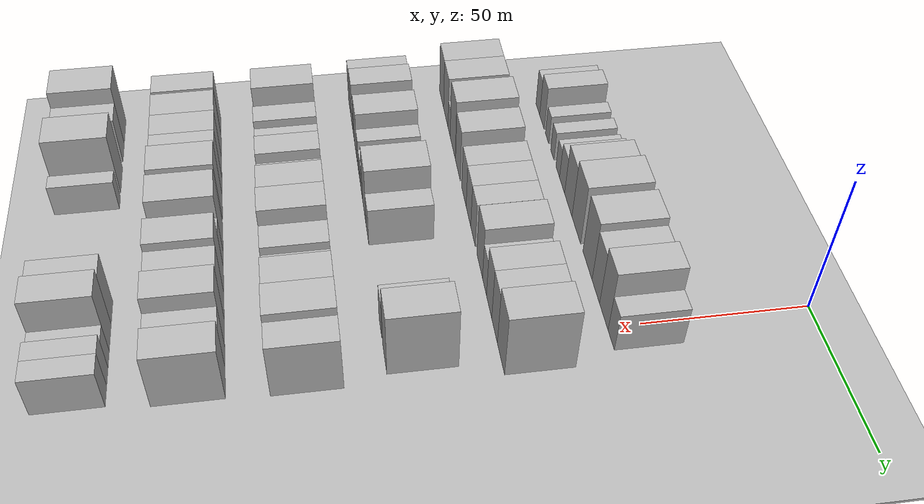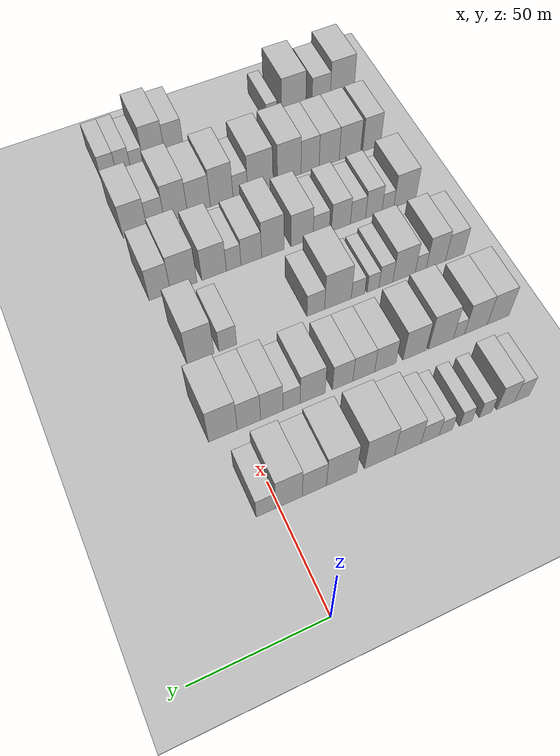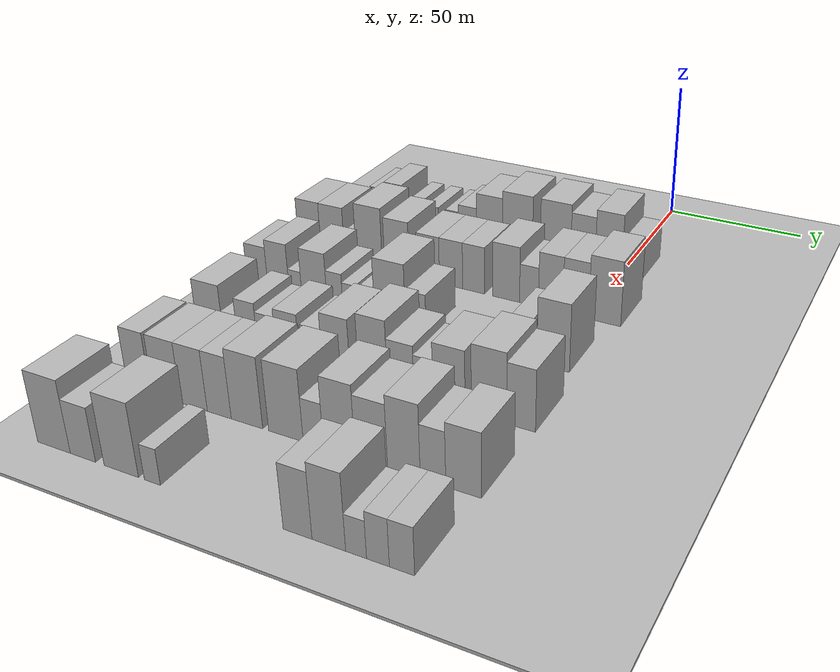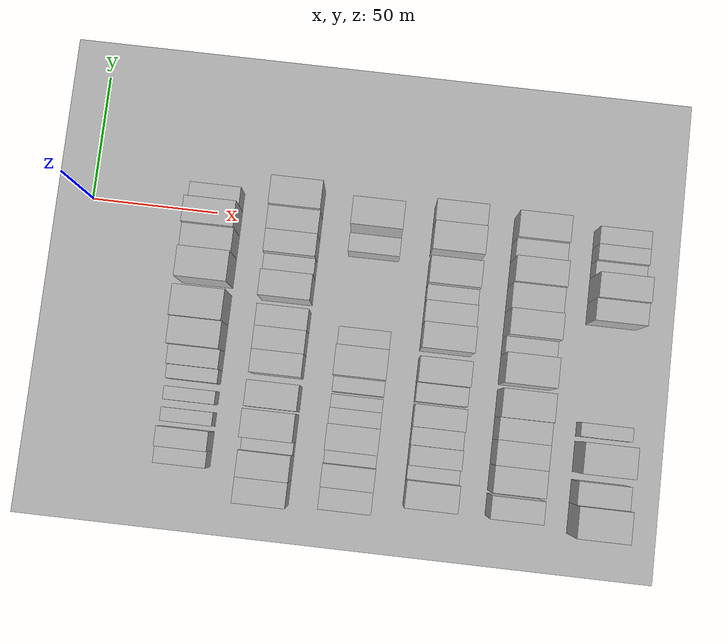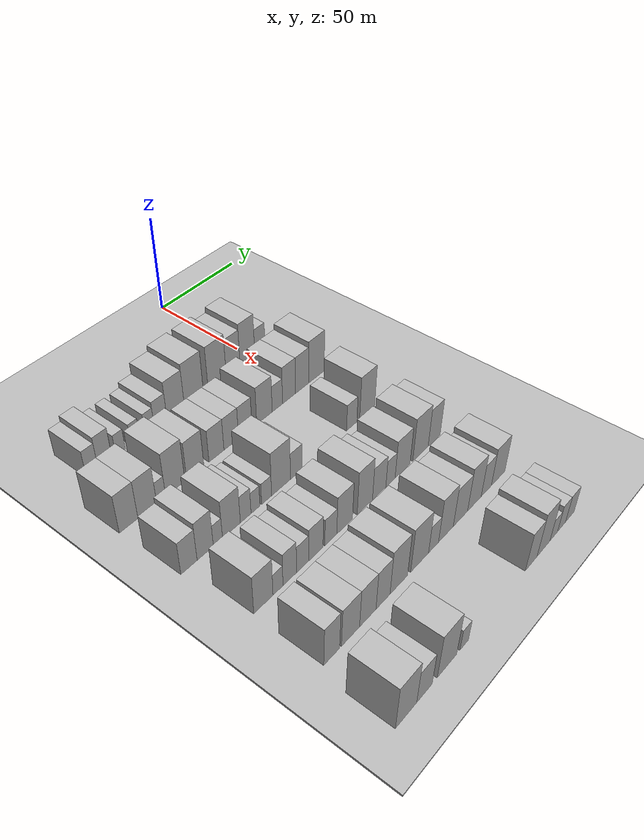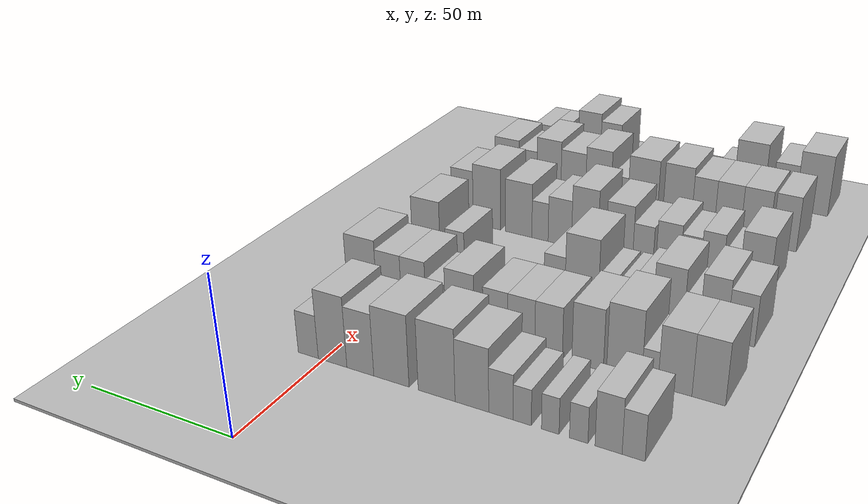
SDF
<sdf version="1.6">
 <world name="default">
  <include><name>ground_plane_1</name><uri>model://HANNAS_ground_plane</uri></include>
  <include>
   <name>ground_plane_2</name>
   <uri>model://HANNAS_ground_plane</uri>
   <pose>100 0 0  0 0 0</pose>
  </include>
  <model name="building_50">
   <static>1</static>
   <pose>50.0000 -96.8530 0 0.000000 0.000000 0.000000</pose>
   <link name="link">
    <pose>0 0 7.50 0 0 0</pose>
    <collision name="collision"><geometry><box><size>20.0000 6.2862 15.0000</size></box></geometry></collision>
    <visual name="visual">
     <cast_shadows>0</cast_shadows>
     <geometry><box><size>20.0000 6.2862 15.0000</size></box></geometry>
     <material>
      <script>
       <uri>model://HANNAS_wall/materials/scripts</uri>
       <uri>model://HANNAS_wall/materials/textures</uri>
       <name>vrc/HANNAS_wall</name>
      </script>
     </material>
    </visual>
   </link>
  </model>
  <model name="building_51">
   <static>1</static>
   <pose>50.0000 -89.9344 0 0.000000 0.000000 0.000000</pose>
   <link name="link">
    <pose>0 0 9.00 0 0 0</pose>
    <collision name="collision"><geometry><box><size>20.0000 7.5508 18.0000</size></box></geometry></collision>
    <visual name="visual">
     <cast_shadows>0</cast_shadows>
     <geometry><box><size>20.0000 7.5508 18.0000</size></box></geometry>
     <material>
      <script>
       <uri>model://HANNAS_wall/materials/scripts</uri>
       <uri>model://HANNAS_wall/materials/textures</uri>
       <name>vrc/HANNAS_wall</name>
      </script>
     </material>
    </visual>
   </link>
  </model>
  <model name="building_52">
   <static>1</static>
   <pose>50.0000 -81.5218 0 0.000000 0.000000 0.000000</pose>
   <link name="link">
    <pose>0 0 6.00 0 0 0</pose>
    <collision name="collision"><geometry><box><size>20.0000 5.2744 12.0000</size></box></geometry></collision>
    <visual name="visual">
     <cast_shadows>0</cast_shadows>
     <geometry><box><size>20.0000 5.2744 12.0000</size></box></geometry>
     <material>
      <script>
       <uri>model://HANNAS_wall/materials/scripts</uri>
       <uri>model://HANNAS_wall/materials/textures</uri>
       <name>vrc/HANNAS_wall</name>
      </script>
     </material>
    </visual>
   </link>
  </model>
  <model name="building_53">
   <static>1</static>
   <pose>50.0000 -73.3249 0 0.000000 0.000000 0.000000</pose>
   <link name="link">
    <pose>0 0 6.00 0 0 0</pose>
    <collision name="collision"><geometry><box><size>20.0000 5.1194 12.0000</size></box></geometry></collision>
    <visual name="visual">
     <cast_shadows>0</cast_shadows>
     <geometry><box><size>20.0000 5.1194 12.0000</size></box></geometry>
     <material>
      <script>
       <uri>model://HANNAS_wall/materials/scripts</uri>
       <uri>model://HANNAS_wall/materials/textures</uri>
       <name>vrc/HANNAS_wall</name>
      </script>
     </material>
    </visual>
   </link>
  </model>
  <model name="building_54">
   <static>1</static>
   <pose>50.0000 -65.0738 0 0.000000 0.000000 0.000000</pose>
   <link name="link">
    <pose>0 0 6.00 0 0 0</pose>
    <collision name="collision"><geometry><box><size>20.0000 5.3829 12.0000</size></box></geometry></collision>
    <visual name="visual">
     <cast_shadows>0</cast_shadows>
     <geometry><box><size>20.0000 5.3829 12.0000</size></box></geometry>
     <material>
      <script>
       <uri>model://HANNAS_wall/materials/scripts</uri>
       <uri>model://HANNAS_wall/materials/textures</uri>
       <name>vrc/HANNAS_wall</name>
      </script>
     </material>
    </visual>
   </link>
  </model>
  <model name="building_55">
   <static>1</static>
   <pose>50.0000 -58.6623 0 0.000000 0.000000 0.000000</pose>
   <link name="link">
    <pose>0 0 7.50 0 0 0</pose>
    <collision name="collision"><geometry><box><size>20.0000 7.4402 15.0000</size></box></geometry></collision>
    <visual name="visual">
     <cast_shadows>0</cast_shadows>
     <geometry><box><size>20.0000 7.4402 15.0000</size></box></geometry>
     <material>
      <script>
       <uri>model://HANNAS_wall/materials/scripts</uri>
       <uri>model://HANNAS_wall/materials/textures</uri>
       <name>vrc/HANNAS_wall</name>
      </script>
     </material>
    </visual>
   </link>
  </model>
  <model name="building_56">
   <static>1</static>
   <pose>50.0000 -49.7001 0 0.000000 0.000000 0.000000</pose>
   <link name="link">
    <pose>0 0 10.50 0 0 0</pose>
    <collision name="collision"><geometry><box><size>20.0000 10.4841 21.0000</size></box></geometry></collision>
    <visual name="visual">
     <cast_shadows>0</cast_shadows>
     <geometry><box><size>20.0000 10.4841 21.0000</size></box></geometry>
     <material>
      <script>
       <uri>model://HANNAS_wall/materials/scripts</uri>
       <uri>model://HANNAS_wall/materials/textures</uri>
       <name>vrc/HANNAS_wall</name>
      </script>
     </material>
    </visual>
   </link>
  </model>
  <model name="building_57">
   <static>1</static>
   <pose>50.0000 -38.5449 0 0.000000 0.000000 0.000000</pose>
   <link name="link">
    <pose>0 0 12.00 0 0 0</pose>
    <collision name="collision"><geometry><box><size>20.0000 11.8264 24.0000</size></box></geometry></collision>
    <visual name="visual">
     <cast_shadows>0</cast_shadows>
     <geometry><box><size>20.0000 11.8264 24.0000</size></box></geometry>
     <material>
      <script>
       <uri>model://HANNAS_wall/materials/scripts</uri>
       <uri>model://HANNAS_wall/materials/textures</uri>
       <name>vrc/HANNAS_wall</name>
      </script>
     </material>
    </visual>
   </link>
  </model>
  <model name="building_58">
   <static>1</static>
   <pose>50.0000 -23.7656 0 0.000000 0.000000 0.000000</pose>
   <link name="link">
    <pose>0 0 12.00 0 0 0</pose>
    <collision name="collision"><geometry><box><size>20.0000 11.7323 24.0000</size></box></geometry></collision>
    <visual name="visual">
     <cast_shadows>0</cast_shadows>
     <geometry><box><size>20.0000 11.7323 24.0000</size></box></geometry>
     <material>
      <script>
       <uri>model://HANNAS_wall/materials/scripts</uri>
       <uri>model://HANNAS_wall/materials/textures</uri>
       <name>vrc/HANNAS_wall</name>
      </script>
     </material>
    </visual>
   </link>
  </model>
  <model name="building_59">
   <static>1</static>
   <pose>50.0000 -13.2902 0 0.000000 0.000000 0.000000</pose>
   <link name="link">
    <pose>0 0 10.50 0 0 0</pose>
    <collision name="collision"><geometry><box><size>20.0000 9.2184 21.0000</size></box></geometry></collision>
    <visual name="visual">
     <cast_shadows>0</cast_shadows>
     <geometry><box><size>20.0000 9.2184 21.0000</size></box></geometry>
     <material>
      <script>
       <uri>model://HANNAS_wall/materials/scripts</uri>
       <uri>model://HANNAS_wall/materials/textures</uri>
       <name>vrc/HANNAS_wall</name>
      </script>
     </material>
    </visual>
   </link>
  </model>
  <model name="building_60">
   <static>1</static>
   <pose>50.0000 -3.6749 0 0.000000 0.000000 0.000000</pose>
   <link name="link">
    <pose>0 0 12.00 0 0 0</pose>
    <collision name="collision"><geometry><box><size>20.0000 10.0123 24.0000</size></box></geometry></collision>
    <visual name="visual">
     <cast_shadows>0</cast_shadows>
     <geometry><box><size>20.0000 10.0123 24.0000</size></box></geometry>
     <material>
      <script>
       <uri>model://HANNAS_wall/materials/scripts</uri>
       <uri>model://HANNAS_wall/materials/textures</uri>
       <name>vrc/HANNAS_wall</name>
      </script>
     </material>
    </visual>
   </link>
  </model>
  <model name="building_61">
   <static>1</static>
   <pose>50.0000 4.9216 0 0.000000 0.000000 0.000000</pose>
   <link name="link">
    <pose>0 0 7.50 0 0 0</pose>
    <collision name="collision"><geometry><box><size>20.0000 7.1806 15.0000</size></box></geometry></collision>
    <visual name="visual">
     <cast_shadows>0</cast_shadows>
     <geometry><box><size>20.0000 7.1806 15.0000</size></box></geometry>
     <material>
      <script>
       <uri>model://HANNAS_wall/materials/scripts</uri>
       <uri>model://HANNAS_wall/materials/textures</uri>
       <name>vrc/HANNAS_wall</name>
      </script>
     </material>
    </visual>
   </link>
  </model>
  <model name="building_169">
   <static>1</static>
   <pose>82.0000 -106.3105 0 0.000000 0.000000 0.000000</pose>
   <link name="link">
    <pose>0 0 10.50 0 0 0</pose>
    <collision name="collision"><geometry><box><size>20.0000 9.6107 21.0000</size></box></geometry></collision>
    <visual name="visual">
     <cast_shadows>0</cast_shadows>
     <geometry><box><size>20.0000 9.6107 21.0000</size></box></geometry>
     <material>
      <script>
       <uri>model://HANNAS_wall/materials/scripts</uri>
       <uri>model://HANNAS_wall/materials/textures</uri>
       <name>vrc/HANNAS_wall</name>
      </script>
     </material>
    </visual>
   </link>
  </model>
  <model name="building_170">
   <static>1</static>
   <pose>82.0000 -96.5243 0 0.000000 0.000000 0.000000</pose>
   <link name="link">
    <pose>0 0 10.50 0 0 0</pose>
    <collision name="collision"><geometry><box><size>20.0000 9.9618 21.0000</size></box></geometry></collision>
    <visual name="visual">
     <cast_shadows>0</cast_shadows>
     <geometry><box><size>20.0000 9.9618 21.0000</size></box></geometry>
     <material>
      <script>
       <uri>model://HANNAS_wall/materials/scripts</uri>
       <uri>model://HANNAS_wall/materials/textures</uri>
       <name>vrc/HANNAS_wall</name>
      </script>
     </material>
    </visual>
   </link>
  </model>
  <model name="building_171">
   <static>1</static>
   <pose>82.0000 -89.1124 0 0.000000 0.000000 0.000000</pose>
   <link name="link">
    <pose>0 0 6.00 0 0 0</pose>
    <collision name="collision"><geometry><box><size>20.0000 4.8620 12.0000</size></box></geometry></collision>
    <visual name="visual">
     <cast_shadows>0</cast_shadows>
     <geometry><box><size>20.0000 4.8620 12.0000</size></box></geometry>
     <material>
      <script>
       <uri>model://HANNAS_wall/materials/scripts</uri>
       <uri>model://HANNAS_wall/materials/textures</uri>
       <name>vrc/HANNAS_wall</name>
      </script>
     </material>
    </visual>
   </link>
  </model>
  <model name="building_172">
   <static>1</static>
   <pose>82.0000 -81.3336 0 0.000000 0.000000 0.000000</pose>
   <link name="link">
    <pose>0 0 12.00 0 0 0</pose>
    <collision name="collision"><geometry><box><size>20.0000 10.6955 24.0000</size></box></geometry></collision>
    <visual name="visual">
     <cast_shadows>0</cast_shadows>
     <geometry><box><size>20.0000 10.6955 24.0000</size></box></geometry>
     <material>
      <script>
       <uri>model://HANNAS_wall/materials/scripts</uri>
       <uri>model://HANNAS_wall/materials/textures</uri>
       <name>vrc/HANNAS_wall</name>
      </script>
     </material>
    </visual>
   </link>
  </model>
  <model name="building_173">
   <static>1</static>
   <pose>82.0000 -70.0472 0 0.000000 0.000000 0.000000</pose>
   <link name="link">
    <pose>0 0 10.50 0 0 0</pose>
    <collision name="collision"><geometry><box><size>20.0000 9.8774 21.0000</size></box></geometry></collision>
    <visual name="visual">
     <cast_shadows>0</cast_shadows>
     <geometry><box><size>20.0000 9.8774 21.0000</size></box></geometry>
     <material>
      <script>
       <uri>model://HANNAS_wall/materials/scripts</uri>
       <uri>model://HANNAS_wall/materials/textures</uri>
       <name>vrc/HANNAS_wall</name>
      </script>
     </material>
    </visual>
   </link>
  </model>
  <model name="building_174">
   <static>1</static>
   <pose>82.0000 -57.6545 0 0.000000 0.000000 0.000000</pose>
   <link name="link">
    <pose>0 0 9.00 0 0 0</pose>
    <collision name="collision"><geometry><box><size>20.0000 8.9080 18.0000</size></box></geometry></collision>
    <visual name="visual">
     <cast_shadows>0</cast_shadows>
     <geometry><box><size>20.0000 8.9080 18.0000</size></box></geometry>
     <material>
      <script>
       <uri>model://HANNAS_wall/materials/scripts</uri>
       <uri>model://HANNAS_wall/materials/textures</uri>
       <name>vrc/HANNAS_wall</name>
      </script>
     </material>
    </visual>
   </link>
  </model>
  <model name="building_175">
   <static>1</static>
   <pose>82.0000 -48.7244 0 0.000000 0.000000 0.000000</pose>
   <link name="link">
    <pose>0 0 9.00 0 0 0</pose>
    <collision name="collision"><geometry><box><size>20.0000 8.9522 18.0000</size></box></geometry></collision>
    <visual name="visual">
     <cast_shadows>0</cast_shadows>
     <geometry><box><size>20.0000 8.9522 18.0000</size></box></geometry>
     <material>
      <script>
       <uri>model://HANNAS_wall/materials/scripts</uri>
       <uri>model://HANNAS_wall/materials/textures</uri>
       <name>vrc/HANNAS_wall</name>
      </script>
     </material>
    </visual>
   </link>
  </model>
  <model name="building_176">
   <static>1</static>
   <pose>82.0000 -40.0825 0 0.000000 0.000000 0.000000</pose>
   <link name="link">
    <pose>0 0 9.00 0 0 0</pose>
    <collision name="collision"><geometry><box><size>20.0000 8.3317 18.0000</size></box></geometry></collision>
    <visual name="visual">
     <cast_shadows>0</cast_shadows>
     <geometry><box><size>20.0000 8.3317 18.0000</size></box></geometry>
     <material>
      <script>
       <uri>model://HANNAS_wall/materials/scripts</uri>
       <uri>model://HANNAS_wall/materials/textures</uri>
       <name>vrc/HANNAS_wall</name>
      </script>
     </material>
    </visual>
   </link>
  </model>
  <model name="building_177">
   <static>1</static>
   <pose>82.0000 -27.9128 0 0.000000 0.000000 0.000000</pose>
   <link name="link">
    <pose>0 0 10.50 0 0 0</pose>
    <collision name="collision"><geometry><box><size>20.0000 10.0077 21.0000</size></box></geometry></collision>
    <visual name="visual">
     <cast_shadows>0</cast_shadows>
     <geometry><box><size>20.0000 10.0077 21.0000</size></box></geometry>
     <material>
      <script>
       <uri>model://HANNAS_wall/materials/scripts</uri>
       <uri>model://HANNAS_wall/materials/textures</uri>
       <name>vrc/HANNAS_wall</name>
      </script>
     </material>
    </visual>
   </link>
  </model>
  <model name="building_178">
   <static>1</static>
   <pose>82.0000 -19.4747 0 0.000000 0.000000 0.000000</pose>
   <link name="link">
    <pose>0 0 7.50 0 0 0</pose>
    <collision name="collision"><geometry><box><size>20.0000 6.8683 15.0000</size></box></geometry></collision>
    <visual name="visual">
     <cast_shadows>0</cast_shadows>
     <geometry><box><size>20.0000 6.8683 15.0000</size></box></geometry>
     <material>
      <script>
       <uri>model://HANNAS_wall/materials/scripts</uri>
       <uri>model://HANNAS_wall/materials/textures</uri>
       <name>vrc/HANNAS_wall</name>
      </script>
     </material>
    </visual>
   </link>
  </model>
  <model name="building_179">
   <static>1</static>
   <pose>82.0000 -11.6613 0 0.000000 0.000000 0.000000</pose>
   <link name="link">
    <pose>0 0 10.50 0 0 0</pose>
    <collision name="collision"><geometry><box><size>20.0000 8.7586 21.0000</size></box></geometry></collision>
    <visual name="visual">
     <cast_shadows>0</cast_shadows>
     <geometry><box><size>20.0000 8.7586 21.0000</size></box></geometry>
     <material>
      <script>
       <uri>model://HANNAS_wall/materials/scripts</uri>
       <uri>model://HANNAS_wall/materials/textures</uri>
       <name>vrc/HANNAS_wall</name>
      </script>
     </material>
    </visual>
   </link>
  </model>
  <model name="building_180">
   <static>1</static>
   <pose>82.0000 -2.7409 0 0.000000 0.000000 0.000000</pose>
   <link name="link">
    <pose>0 0 10.50 0 0 0</pose>
    <collision name="collision"><geometry><box><size>20.0000 9.0822 21.0000</size></box></geometry></collision>
    <visual name="visual">
     <cast_shadows>0</cast_shadows>
     <geometry><box><size>20.0000 9.0822 21.0000</size></box></geometry>
     <material>
      <script>
       <uri>model://HANNAS_wall/materials/scripts</uri>
       <uri>model://HANNAS_wall/materials/textures</uri>
       <name>vrc/HANNAS_wall</name>
      </script>
     </material>
    </visual>
   </link>
  </model>
  <model name="building_181">
   <static>1</static>
   <pose>82.0000 7.3405 0 0.000000 0.000000 0.000000</pose>
   <link name="link">
    <pose>0 0 12.00 0 0 0</pose>
    <collision name="collision"><geometry><box><size>20.0000 11.0805 24.0000</size></box></geometry></collision>
    <visual name="visual">
     <cast_shadows>0</cast_shadows>
     <geometry><box><size>20.0000 11.0805 24.0000</size></box></geometry>
     <material>
      <script>
       <uri>model://HANNAS_wall/materials/scripts</uri>
       <uri>model://HANNAS_wall/materials/textures</uri>
       <name>vrc/HANNAS_wall</name>
      </script>
     </material>
    </visual>
   </link>
  </model>
  <model name="building_285">
   <static>1</static>
   <pose>114.0000 -105.7502 0 0.000000 0.000000 0.000000</pose>
   <link name="link">
    <pose>0 0 9.00 0 0 0</pose>
    <collision name="collision"><geometry><box><size>20.0000 8.4553 18.0000</size></box></geometry></collision>
    <visual name="visual">
     <cast_shadows>0</cast_shadows>
     <geometry><box><size>20.0000 8.4553 18.0000</size></box></geometry>
     <material>
      <script>
       <uri>model://HANNAS_wall/materials/scripts</uri>
       <uri>model://HANNAS_wall/materials/textures</uri>
       <name>vrc/HANNAS_wall</name>
      </script>
     </material>
    </visual>
   </link>
  </model>
  <model name="building_286">
   <static>1</static>
   <pose>114.0000 -97.1924 0 0.000000 0.000000 0.000000</pose>
   <link name="link">
    <pose>0 0 10.50 0 0 0</pose>
    <collision name="collision"><geometry><box><size>20.0000 8.6603 21.0000</size></box></geometry></collision>
    <visual name="visual">
     <cast_shadows>0</cast_shadows>
     <geometry><box><size>20.0000 8.6603 21.0000</size></box></geometry>
     <material>
      <script>
       <uri>model://HANNAS_wall/materials/scripts</uri>
       <uri>model://HANNAS_wall/materials/textures</uri>
       <name>vrc/HANNAS_wall</name>
      </script>
     </material>
    </visual>
   </link>
  </model>
  <model name="building_287">
   <static>1</static>
   <pose>114.0000 -90.3554 0 0.000000 0.000000 0.000000</pose>
   <link name="link">
    <pose>0 0 6.00 0 0 0</pose>
    <collision name="collision"><geometry><box><size>20.0000 5.0138 12.0000</size></box></geometry></collision>
    <visual name="visual">
     <cast_shadows>0</cast_shadows>
     <geometry><box><size>20.0000 5.0138 12.0000</size></box></geometry>
     <material>
      <script>
       <uri>model://HANNAS_wall/materials/scripts</uri>
       <uri>model://HANNAS_wall/materials/textures</uri>
       <name>vrc/HANNAS_wall</name>
      </script>
     </material>
    </visual>
   </link>
  </model>
  <model name="building_288">
   <static>1</static>
   <pose>114.0000 -82.8773 0 0.000000 0.000000 0.000000</pose>
   <link name="link">
    <pose>0 0 10.50 0 0 0</pose>
    <collision name="collision"><geometry><box><size>20.0000 9.9423 21.0000</size></box></geometry></collision>
    <visual name="visual">
     <cast_shadows>0</cast_shadows>
     <geometry><box><size>20.0000 9.9423 21.0000</size></box></geometry>
     <material>
      <script>
       <uri>model://HANNAS_wall/materials/scripts</uri>
       <uri>model://HANNAS_wall/materials/textures</uri>
       <name>vrc/HANNAS_wall</name>
      </script>
     </material>
    </visual>
   </link>
  </model>
  <model name="building_289">
   <static>1</static>
   <pose>114.0000 -74.8533 0 0.000000 0.000000 0.000000</pose>
   <link name="link">
    <pose>0 0 7.50 0 0 0</pose>
    <collision name="collision"><geometry><box><size>20.0000 6.1058 15.0000</size></box></geometry></collision>
    <visual name="visual">
     <cast_shadows>0</cast_shadows>
     <geometry><box><size>20.0000 6.1058 15.0000</size></box></geometry>
     <material>
      <script>
       <uri>model://HANNAS_wall/materials/scripts</uri>
       <uri>model://HANNAS_wall/materials/textures</uri>
       <name>vrc/HANNAS_wall</name>
      </script>
     </material>
    </visual>
   </link>
  </model>
  <model name="building_290">
   <static>1</static>
   <pose>114.0000 -69.2183 0 0.000000 0.000000 0.000000</pose>
   <link name="link">
    <pose>0 0 6.00 0 0 0</pose>
    <collision name="collision"><geometry><box><size>20.0000 5.1643 12.0000</size></box></geometry></collision>
    <visual name="visual">
     <cast_shadows>0</cast_shadows>
     <geometry><box><size>20.0000 5.1643 12.0000</size></box></geometry>
     <material>
      <script>
       <uri>model://HANNAS_wall/materials/scripts</uri>
       <uri>model://HANNAS_wall/materials/textures</uri>
       <name>vrc/HANNAS_wall</name>
      </script>
     </material>
    </visual>
   </link>
  </model>
  <model name="building_291">
   <static>1</static>
   <pose>114.0000 -62.6835 0 0.000000 0.000000 0.000000</pose>
   <link name="link">
    <pose>0 0 6.00 0 0 0</pose>
    <collision name="collision"><geometry><box><size>20.0000 5.9053 12.0000</size></box></geometry></collision>
    <visual name="visual">
     <cast_shadows>0</cast_shadows>
     <geometry><box><size>20.0000 5.9053 12.0000</size></box></geometry>
     <material>
      <script>
       <uri>model://HANNAS_wall/materials/scripts</uri>
       <uri>model://HANNAS_wall/materials/textures</uri>
       <name>vrc/HANNAS_wall</name>
      </script>
     </material>
    </visual>
   </link>
  </model>
  <model name="building_292">
   <static>1</static>
   <pose>114.0000 -53.9890 0 0.000000 0.000000 0.000000</pose>
   <link name="link">
    <pose>0 0 12.00 0 0 0</pose>
    <collision name="collision"><geometry><box><size>20.0000 11.4835 24.0000</size></box></geometry></collision>
    <visual name="visual">
     <cast_shadows>0</cast_shadows>
     <geometry><box><size>20.0000 11.4835 24.0000</size></box></geometry>
     <material>
      <script>
       <uri>model://HANNAS_wall/materials/scripts</uri>
       <uri>model://HANNAS_wall/materials/textures</uri>
       <name>vrc/HANNAS_wall</name>
      </script>
     </material>
    </visual>
   </link>
  </model>
  <model name="building_293">
   <static>1</static>
   <pose>114.0000 -44.5212 0 0.000000 0.000000 0.000000</pose>
   <link name="link">
    <pose>0 0 7.50 0 0 0</pose>
    <collision name="collision"><geometry><box><size>20.0000 7.4520 15.0000</size></box></geometry></collision>
    <visual name="visual">
     <cast_shadows>0</cast_shadows>
     <geometry><box><size>20.0000 7.4520 15.0000</size></box></geometry>
     <material>
      <script>
       <uri>model://HANNAS_wall/materials/scripts</uri>
       <uri>model://HANNAS_wall/materials/textures</uri>
       <name>vrc/HANNAS_wall</name>
      </script>
     </material>
    </visual>
   </link>
  </model>
  <model name="building_294">
   <static>1</static>
   <pose>114.0000 -8.0054 0 0.000000 0.000000 0.000000</pose>
   <link name="link">
    <pose>0 0 7.50 0 0 0</pose>
    <collision name="collision"><geometry><box><size>20.0000 7.1932 15.0000</size></box></geometry></collision>
    <visual name="visual">
     <cast_shadows>0</cast_shadows>
     <geometry><box><size>20.0000 7.1932 15.0000</size></box></geometry>
     <material>
      <script>
       <uri>model://HANNAS_wall/materials/scripts</uri>
       <uri>model://HANNAS_wall/materials/textures</uri>
       <name>vrc/HANNAS_wall</name>
      </script>
     </material>
    </visual>
   </link>
  </model>
  <model name="building_295">
   <static>1</static>
   <pose>114.0000 2.9822 0 0.000000 0.000000 0.000000</pose>
   <link name="link">
    <pose>0 0 12.00 0 0 0</pose>
    <collision name="collision"><geometry><box><size>20.0000 10.7820 24.0000</size></box></geometry></collision>
    <visual name="visual">
     <cast_shadows>0</cast_shadows>
     <geometry><box><size>20.0000 10.7820 24.0000</size></box></geometry>
     <material>
      <script>
       <uri>model://HANNAS_wall/materials/scripts</uri>
       <uri>model://HANNAS_wall/materials/textures</uri>
       <name>vrc/HANNAS_wall</name>
      </script>
     </material>
    </visual>
   </link>
  </model>
  <model name="building_401">
   <static>1</static>
   <pose>146.0000 -100.5847 0 0.000000 0.000000 0.000000</pose>
   <link name="link">
    <pose>0 0 10.50 0 0 0</pose>
    <collision name="collision"><geometry><box><size>20.0000 10.2736 21.0000</size></box></geometry></collision>
    <visual name="visual">
     <cast_shadows>0</cast_shadows>
     <geometry><box><size>20.0000 10.2736 21.0000</size></box></geometry>
     <material>
      <script>
       <uri>model://HANNAS_wall/materials/scripts</uri>
       <uri>model://HANNAS_wall/materials/textures</uri>
       <name>vrc/HANNAS_wall</name>
      </script>
     </material>
    </visual>
   </link>
  </model>
  <model name="building_402">
   <static>1</static>
   <pose>146.0000 -92.6998 0 0.000000 0.000000 0.000000</pose>
   <link name="link">
    <pose>0 0 6.00 0 0 0</pose>
    <collision name="collision"><geometry><box><size>20.0000 5.4962 12.0000</size></box></geometry></collision>
    <visual name="visual">
     <cast_shadows>0</cast_shadows>
     <geometry><box><size>20.0000 5.4962 12.0000</size></box></geometry>
     <material>
      <script>
       <uri>model://HANNAS_wall/materials/scripts</uri>
       <uri>model://HANNAS_wall/materials/textures</uri>
       <name>vrc/HANNAS_wall</name>
      </script>
     </material>
    </visual>
   </link>
  </model>
  <model name="building_403">
   <static>1</static>
   <pose>146.0000 -86.1677 0 0.000000 0.000000 0.000000</pose>
   <link name="link">
    <pose>0 0 9.00 0 0 0</pose>
    <collision name="collision"><geometry><box><size>20.0000 7.5682 18.0000</size></box></geometry></collision>
    <visual name="visual">
     <cast_shadows>0</cast_shadows>
     <geometry><box><size>20.0000 7.5682 18.0000</size></box></geometry>
     <material>
      <script>
       <uri>model://HANNAS_wall/materials/scripts</uri>
       <uri>model://HANNAS_wall/materials/textures</uri>
       <name>vrc/HANNAS_wall</name>
      </script>
     </material>
    </visual>
   </link>
  </model>
  <model name="building_404">
   <static>1</static>
   <pose>146.0000 -78.9229 0 0.000000 0.000000 0.000000</pose>
   <link name="link">
    <pose>0 0 7.50 0 0 0</pose>
    <collision name="collision"><geometry><box><size>20.0000 6.9214 15.0000</size></box></geometry></collision>
    <visual name="visual">
     <cast_shadows>0</cast_shadows>
     <geometry><box><size>20.0000 6.9214 15.0000</size></box></geometry>
     <material>
      <script>
       <uri>model://HANNAS_wall/materials/scripts</uri>
       <uri>model://HANNAS_wall/materials/textures</uri>
       <name>vrc/HANNAS_wall</name>
      </script>
     </material>
    </visual>
   </link>
  </model>
  <model name="building_405">
   <static>1</static>
   <pose>146.0000 -71.1935 0 0.000000 0.000000 0.000000</pose>
   <link name="link">
    <pose>0 0 9.00 0 0 0</pose>
    <collision name="collision"><geometry><box><size>20.0000 8.5375 18.0000</size></box></geometry></collision>
    <visual name="visual">
     <cast_shadows>0</cast_shadows>
     <geometry><box><size>20.0000 8.5375 18.0000</size></box></geometry>
     <material>
      <script>
       <uri>model://HANNAS_wall/materials/scripts</uri>
       <uri>model://HANNAS_wall/materials/textures</uri>
       <name>vrc/HANNAS_wall</name>
      </script>
     </material>
    </visual>
   </link>
  </model>
  <model name="building_406">
   <static>1</static>
   <pose>146.0000 -62.2902 0 0.000000 0.000000 0.000000</pose>
   <link name="link">
    <pose>0 0 7.50 0 0 0</pose>
    <collision name="collision"><geometry><box><size>20.0000 7.2692 15.0000</size></box></geometry></collision>
    <visual name="visual">
     <cast_shadows>0</cast_shadows>
     <geometry><box><size>20.0000 7.2692 15.0000</size></box></geometry>
     <material>
      <script>
       <uri>model://HANNAS_wall/materials/scripts</uri>
       <uri>model://HANNAS_wall/materials/textures</uri>
       <name>vrc/HANNAS_wall</name>
      </script>
     </material>
    </visual>
   </link>
  </model>
  <model name="building_407">
   <static>1</static>
   <pose>146.0000 -53.7793 0 0.000000 0.000000 0.000000</pose>
   <link name="link">
    <pose>0 0 10.50 0 0 0</pose>
    <collision name="collision"><geometry><box><size>20.0000 9.7526 21.0000</size></box></geometry></collision>
    <visual name="visual">
     <cast_shadows>0</cast_shadows>
     <geometry><box><size>20.0000 9.7526 21.0000</size></box></geometry>
     <material>
      <script>
       <uri>model://HANNAS_wall/materials/scripts</uri>
       <uri>model://HANNAS_wall/materials/textures</uri>
       <name>vrc/HANNAS_wall</name>
      </script>
     </material>
    </visual>
   </link>
  </model>
  <model name="building_408">
   <static>1</static>
   <pose>146.0000 -40.9687 0 0.000000 0.000000 0.000000</pose>
   <link name="link">
    <pose>0 0 12.00 0 0 0</pose>
    <collision name="collision"><geometry><box><size>20.0000 9.8686 24.0000</size></box></geometry></collision>
    <visual name="visual">
     <cast_shadows>0</cast_shadows>
     <geometry><box><size>20.0000 9.8686 24.0000</size></box></geometry>
     <material>
      <script>
       <uri>model://HANNAS_wall/materials/scripts</uri>
       <uri>model://HANNAS_wall/materials/textures</uri>
       <name>vrc/HANNAS_wall</name>
      </script>
     </material>
    </visual>
   </link>
  </model>
  <model name="building_409">
   <static>1</static>
   <pose>146.0000 -31.5920 0 0.000000 0.000000 0.000000</pose>
   <link name="link">
    <pose>0 0 9.00 0 0 0</pose>
    <collision name="collision"><geometry><box><size>20.0000 8.8848 18.0000</size></box></geometry></collision>
    <visual name="visual">
     <cast_shadows>0</cast_shadows>
     <geometry><box><size>20.0000 8.8848 18.0000</size></box></geometry>
     <material>
      <script>
       <uri>model://HANNAS_wall/materials/scripts</uri>
       <uri>model://HANNAS_wall/materials/textures</uri>
       <name>vrc/HANNAS_wall</name>
      </script>
     </material>
    </visual>
   </link>
  </model>
  <model name="building_410">
   <static>1</static>
   <pose>146.0000 -23.9958 0 0.000000 0.000000 0.000000</pose>
   <link name="link">
    <pose>0 0 7.50 0 0 0</pose>
    <collision name="collision"><geometry><box><size>20.0000 6.3076 15.0000</size></box></geometry></collision>
    <visual name="visual">
     <cast_shadows>0</cast_shadows>
     <geometry><box><size>20.0000 6.3076 15.0000</size></box></geometry>
     <material>
      <script>
       <uri>model://HANNAS_wall/materials/scripts</uri>
       <uri>model://HANNAS_wall/materials/textures</uri>
       <name>vrc/HANNAS_wall</name>
      </script>
     </material>
    </visual>
   </link>
  </model>
  <model name="building_411">
   <static>1</static>
   <pose>146.0000 -15.6359 0 0.000000 0.000000 0.000000</pose>
   <link name="link">
    <pose>0 0 10.50 0 0 0</pose>
    <collision name="collision"><geometry><box><size>20.0000 10.4121 21.0000</size></box></geometry></collision>
    <visual name="visual">
     <cast_shadows>0</cast_shadows>
     <geometry><box><size>20.0000 10.4121 21.0000</size></box></geometry>
     <material>
      <script>
       <uri>model://HANNAS_wall/materials/scripts</uri>
       <uri>model://HANNAS_wall/materials/textures</uri>
       <name>vrc/HANNAS_wall</name>
      </script>
     </material>
    </visual>
   </link>
  </model>
  <model name="building_412">
   <static>1</static>
   <pose>146.0000 -2.8984 0 0.000000 0.000000 0.000000</pose>
   <link name="link">
    <pose>0 0 12.00 0 0 0</pose>
    <collision name="collision"><geometry><box><size>20.0000 11.0630 24.0000</size></box></geometry></collision>
    <visual name="visual">
     <cast_shadows>0</cast_shadows>
     <geometry><box><size>20.0000 11.0630 24.0000</size></box></geometry>
     <material>
      <script>
       <uri>model://HANNAS_wall/materials/scripts</uri>
       <uri>model://HANNAS_wall/materials/textures</uri>
       <name>vrc/HANNAS_wall</name>
      </script>
     </material>
    </visual>
   </link>
  </model>
  <model name="building_413">
   <static>1</static>
   <pose>146.0000 7.0725 0 0.000000 0.000000 0.000000</pose>
   <link name="link">
    <pose>0 0 10.50 0 0 0</pose>
    <collision name="collision"><geometry><box><size>20.0000 8.8787 21.0000</size></box></geometry></collision>
    <visual name="visual">
     <cast_shadows>0</cast_shadows>
     <geometry><box><size>20.0000 8.8787 21.0000</size></box></geometry>
     <material>
      <script>
       <uri>model://HANNAS_wall/materials/scripts</uri>
       <uri>model://HANNAS_wall/materials/textures</uri>
       <name>vrc/HANNAS_wall</name>
      </script>
     </material>
    </visual>
   </link>
  </model>
  <model name="building_520">
   <static>1</static>
   <pose>178.0000 -101.7954 0 0.000000 0.000000 0.000000</pose>
   <link name="link">
    <pose>0 0 10.50 0 0 0</pose>
    <collision name="collision"><geometry><box><size>20.0000 8.5921 21.0000</size></box></geometry></collision>
    <visual name="visual">
     <cast_shadows>0</cast_shadows>
     <geometry><box><size>20.0000 8.5921 21.0000</size></box></geometry>
     <material>
      <script>
       <uri>model://HANNAS_wall/materials/scripts</uri>
       <uri>model://HANNAS_wall/materials/textures</uri>
       <name>vrc/HANNAS_wall</name>
      </script>
     </material>
    </visual>
   </link>
  </model>
  <model name="building_521">
   <static>1</static>
   <pose>178.0000 -91.3921 0 0.000000 0.000000 0.000000</pose>
   <link name="link">
    <pose>0 0 10.50 0 0 0</pose>
    <collision name="collision"><geometry><box><size>20.0000 10.2146 21.0000</size></box></geometry></collision>
    <visual name="visual">
     <cast_shadows>0</cast_shadows>
     <geometry><box><size>20.0000 10.2146 21.0000</size></box></geometry>
     <material>
      <script>
       <uri>model://HANNAS_wall/materials/scripts</uri>
       <uri>model://HANNAS_wall/materials/textures</uri>
       <name>vrc/HANNAS_wall</name>
      </script>
     </material>
    </visual>
   </link>
  </model>
  <model name="building_522">
   <static>1</static>
   <pose>178.0000 -81.5108 0 0.000000 0.000000 0.000000</pose>
   <link name="link">
    <pose>0 0 10.50 0 0 0</pose>
    <collision name="collision"><geometry><box><size>20.0000 9.5480 21.0000</size></box></geometry></collision>
    <visual name="visual">
     <cast_shadows>0</cast_shadows>
     <geometry><box><size>20.0000 9.5480 21.0000</size></box></geometry>
     <material>
      <script>
       <uri>model://HANNAS_wall/materials/scripts</uri>
       <uri>model://HANNAS_wall/materials/textures</uri>
       <name>vrc/HANNAS_wall</name>
      </script>
     </material>
    </visual>
   </link>
  </model>
  <model name="building_523">
   <static>1</static>
   <pose>178.0000 -72.5234 0 0.000000 0.000000 0.000000</pose>
   <link name="link">
    <pose>0 0 10.50 0 0 0</pose>
    <collision name="collision"><geometry><box><size>20.0000 8.4268 21.0000</size></box></geometry></collision>
    <visual name="visual">
     <cast_shadows>0</cast_shadows>
     <geometry><box><size>20.0000 8.4268 21.0000</size></box></geometry>
     <material>
      <script>
       <uri>model://HANNAS_wall/materials/scripts</uri>
       <uri>model://HANNAS_wall/materials/textures</uri>
       <name>vrc/HANNAS_wall</name>
      </script>
     </material>
    </visual>
   </link>
  </model>
  <model name="building_524">
   <static>1</static>
   <pose>178.0000 -62.8914 0 0.000000 0.000000 0.000000</pose>
   <link name="link">
    <pose>0 0 12.00 0 0 0</pose>
    <collision name="collision"><geometry><box><size>20.0000 10.8372 24.0000</size></box></geometry></collision>
    <visual name="visual">
     <cast_shadows>0</cast_shadows>
     <geometry><box><size>20.0000 10.8372 24.0000</size></box></geometry>
     <material>
      <script>
       <uri>model://HANNAS_wall/materials/scripts</uri>
       <uri>model://HANNAS_wall/materials/textures</uri>
       <name>vrc/HANNAS_wall</name>
      </script>
     </material>
    </visual>
   </link>
  </model>
  <model name="building_525">
   <static>1</static>
   <pose>178.0000 -49.7094 0 0.000000 0.000000 0.000000</pose>
   <link name="link">
    <pose>0 0 12.00 0 0 0</pose>
    <collision name="collision"><geometry><box><size>20.0000 11.5268 24.0000</size></box></geometry></collision>
    <visual name="visual">
     <cast_shadows>0</cast_shadows>
     <geometry><box><size>20.0000 11.5268 24.0000</size></box></geometry>
     <material>
      <script>
       <uri>model://HANNAS_wall/materials/scripts</uri>
       <uri>model://HANNAS_wall/materials/textures</uri>
       <name>vrc/HANNAS_wall</name>
      </script>
     </material>
    </visual>
   </link>
  </model>
  <model name="building_526">
   <static>1</static>
   <pose>178.0000 -40.6232 0 0.000000 0.000000 0.000000</pose>
   <link name="link">
    <pose>0 0 7.50 0 0 0</pose>
    <collision name="collision"><geometry><box><size>20.0000 6.6456 15.0000</size></box></geometry></collision>
    <visual name="visual">
     <cast_shadows>0</cast_shadows>
     <geometry><box><size>20.0000 6.6456 15.0000</size></box></geometry>
     <material>
      <script>
       <uri>model://HANNAS_wall/materials/scripts</uri>
       <uri>model://HANNAS_wall/materials/textures</uri>
       <name>vrc/HANNAS_wall</name>
      </script>
     </material>
    </visual>
   </link>
  </model>
  <model name="building_527">
   <static>1</static>
   <pose>178.0000 -32.2436 0 0.000000 0.000000 0.000000</pose>
   <link name="link">
    <pose>0 0 12.00 0 0 0</pose>
    <collision name="collision"><geometry><box><size>20.0000 10.1135 24.0000</size></box></geometry></collision>
    <visual name="visual">
     <cast_shadows>0</cast_shadows>
     <geometry><box><size>20.0000 10.1135 24.0000</size></box></geometry>
     <material>
      <script>
       <uri>model://HANNAS_wall/materials/scripts</uri>
       <uri>model://HANNAS_wall/materials/textures</uri>
       <name>vrc/HANNAS_wall</name>
      </script>
     </material>
    </visual>
   </link>
  </model>
  <model name="building_528">
   <static>1</static>
   <pose>178.0000 -22.1652 0 0.000000 0.000000 0.000000</pose>
   <link name="link">
    <pose>0 0 10.50 0 0 0</pose>
    <collision name="collision"><geometry><box><size>20.0000 10.0433 21.0000</size></box></geometry></collision>
    <visual name="visual">
     <cast_shadows>0</cast_shadows>
     <geometry><box><size>20.0000 10.0433 21.0000</size></box></geometry>
     <material>
      <script>
       <uri>model://HANNAS_wall/materials/scripts</uri>
       <uri>model://HANNAS_wall/materials/textures</uri>
       <name>vrc/HANNAS_wall</name>
      </script>
     </material>
    </visual>
   </link>
  </model>
  <model name="building_529">
   <static>1</static>
   <pose>178.0000 -12.1748 0 0.000000 0.000000 0.000000</pose>
   <link name="link">
    <pose>0 0 12.00 0 0 0</pose>
    <collision name="collision"><geometry><box><size>20.0000 9.9374 24.0000</size></box></geometry></collision>
    <visual name="visual">
     <cast_shadows>0</cast_shadows>
     <geometry><box><size>20.0000 9.9374 24.0000</size></box></geometry>
     <material>
      <script>
       <uri>model://HANNAS_wall/materials/scripts</uri>
       <uri>model://HANNAS_wall/materials/textures</uri>
       <name>vrc/HANNAS_wall</name>
      </script>
     </material>
    </visual>
   </link>
  </model>
  <model name="building_530">
   <static>1</static>
   <pose>178.0000 -3.4250 0 0.000000 0.000000 0.000000</pose>
   <link name="link">
    <pose>0 0 9.00 0 0 0</pose>
    <collision name="collision"><geometry><box><size>20.0000 7.5623 18.0000</size></box></geometry></collision>
    <visual name="visual">
     <cast_shadows>0</cast_shadows>
     <geometry><box><size>20.0000 7.5623 18.0000</size></box></geometry>
     <material>
      <script>
       <uri>model://HANNAS_wall/materials/scripts</uri>
       <uri>model://HANNAS_wall/materials/textures</uri>
       <name>vrc/HANNAS_wall</name>
      </script>
     </material>
    </visual>
   </link>
  </model>
  <model name="building_531">
   <static>1</static>
   <pose>178.0000 5.5348 0 0.000000 0.000000 0.000000</pose>
   <link name="link">
    <pose>0 0 10.50 0 0 0</pose>
    <collision name="collision"><geometry><box><size>20.0000 10.3572 21.0000</size></box></geometry></collision>
    <visual name="visual">
     <cast_shadows>0</cast_shadows>
     <geometry><box><size>20.0000 10.3572 21.0000</size></box></geometry>
     <material>
      <script>
       <uri>model://HANNAS_wall/materials/scripts</uri>
       <uri>model://HANNAS_wall/materials/textures</uri>
       <name>vrc/HANNAS_wall</name>
      </script>
     </material>
    </visual>
   </link>
  </model>
  <model name="building_634">
   <static>1</static>
   <pose>210.0000 -103.5058 0 0.000000 0.000000 0.000000</pose>
   <link name="link">
    <pose>0 0 12.00 0 0 0</pose>
    <collision name="collision"><geometry><box><size>20.0000 11.8196 24.0000</size></box></geometry></collision>
    <visual name="visual">
     <cast_shadows>0</cast_shadows>
     <geometry><box><size>20.0000 11.8196 24.0000</size></box></geometry>
     <material>
      <script>
       <uri>model://HANNAS_wall/materials/scripts</uri>
       <uri>model://HANNAS_wall/materials/textures</uri>
       <name>vrc/HANNAS_wall</name>
      </script>
     </material>
    </visual>
   </link>
  </model>
  <model name="building_635">
   <static>1</static>
   <pose>210.0000 -93.1326 0 0.000000 0.000000 0.000000</pose>
   <link name="link">
    <pose>0 0 9.00 0 0 0</pose>
    <collision name="collision"><geometry><box><size>20.0000 8.9268 18.0000</size></box></geometry></collision>
    <visual name="visual">
     <cast_shadows>0</cast_shadows>
     <geometry><box><size>20.0000 8.9268 18.0000</size></box></geometry>
     <material>
      <script>
       <uri>model://HANNAS_wall/materials/scripts</uri>
       <uri>model://HANNAS_wall/materials/textures</uri>
       <name>vrc/HANNAS_wall</name>
      </script>
     </material>
    </visual>
   </link>
  </model>
  <model name="building_636">
   <static>1</static>
   <pose>210.0000 -79.8156 0 0.000000 0.000000 0.000000</pose>
   <link name="link">
    <pose>0 0 12.00 0 0 0</pose>
    <collision name="collision"><geometry><box><size>20.0000 11.7073 24.0000</size></box></geometry></collision>
    <visual name="visual">
     <cast_shadows>0</cast_shadows>
     <geometry><box><size>20.0000 11.7073 24.0000</size></box></geometry>
     <material>
      <script>
       <uri>model://HANNAS_wall/materials/scripts</uri>
       <uri>model://HANNAS_wall/materials/textures</uri>
       <name>vrc/HANNAS_wall</name>
      </script>
     </material>
    </visual>
   </link>
  </model>
  <model name="building_637">
   <static>1</static>
   <pose>210.0000 -69.2895 0 0.000000 0.000000 0.000000</pose>
   <link name="link">
    <pose>0 0 6.00 0 0 0</pose>
    <collision name="collision"><geometry><box><size>20.0000 5.3448 12.0000</size></box></geometry></collision>
    <visual name="visual">
     <cast_shadows>0</cast_shadows>
     <geometry><box><size>20.0000 5.3448 12.0000</size></box></geometry>
     <material>
      <script>
       <uri>model://HANNAS_wall/materials/scripts</uri>
       <uri>model://HANNAS_wall/materials/textures</uri>
       <name>vrc/HANNAS_wall</name>
      </script>
     </material>
    </visual>
   </link>
  </model>
  <model name="building_638">
   <static>1</static>
   <pose>210.0000 -23.8310 0 0.000000 0.000000 0.000000</pose>
   <link name="link">
    <pose>0 0 10.50 0 0 0</pose>
    <collision name="collision"><geometry><box><size>20.0000 8.5241 21.0000</size></box></geometry></collision>
    <visual name="visual">
     <cast_shadows>0</cast_shadows>
     <geometry><box><size>20.0000 8.5241 21.0000</size></box></geometry>
     <material>
      <script>
       <uri>model://HANNAS_wall/materials/scripts</uri>
       <uri>model://HANNAS_wall/materials/textures</uri>
       <name>vrc/HANNAS_wall</name>
      </script>
     </material>
    </visual>
   </link>
  </model>
  <model name="building_639">
   <static>1</static>
   <pose>210.0000 -14.7351 0 0.000000 0.000000 0.000000</pose>
   <link name="link">
    <pose>0 0 12.00 0 0 0</pose>
    <collision name="collision"><geometry><box><size>20.0000 9.6677 24.0000</size></box></geometry></collision>
    <visual name="visual">
     <cast_shadows>0</cast_shadows>
     <geometry><box><size>20.0000 9.6677 24.0000</size></box></geometry>
     <material>
      <script>
       <uri>model://HANNAS_wall/materials/scripts</uri>
       <uri>model://HANNAS_wall/materials/textures</uri>
       <name>vrc/HANNAS_wall</name>
      </script>
     </material>
    </visual>
   </link>
  </model>
  <model name="building_640">
   <static>1</static>
   <pose>210.0000 -6.9731 0 0.000000 0.000000 0.000000</pose>
   <link name="link">
    <pose>0 0 6.00 0 0 0</pose>
    <collision name="collision"><geometry><box><size>20.0000 5.8563 12.0000</size></box></geometry></collision>
    <visual name="visual">
     <cast_shadows>0</cast_shadows>
     <geometry><box><size>20.0000 5.8563 12.0000</size></box></geometry>
     <material>
      <script>
       <uri>model://HANNAS_wall/materials/scripts</uri>
       <uri>model://HANNAS_wall/materials/textures</uri>
       <name>vrc/HANNAS_wall</name>
      </script>
     </material>
    </visual>
   </link>
  </model>
  <model name="building_641">
   <static>1</static>
   <pose>210.0000 -0.8879 0 0.000000 0.000000 0.000000</pose>
   <link name="link">
    <pose>0 0 7.50 0 0 0</pose>
    <collision name="collision"><geometry><box><size>20.0000 6.3141 15.0000</size></box></geometry></collision>
    <visual name="visual">
     <cast_shadows>0</cast_shadows>
     <geometry><box><size>20.0000 6.3141 15.0000</size></box></geometry>
     <material>
      <script>
       <uri>model://HANNAS_wall/materials/scripts</uri>
       <uri>model://HANNAS_wall/materials/textures</uri>
       <name>vrc/HANNAS_wall</name>
      </script>
     </material>
    </visual>
   </link>
  </model>
  <model name="building_642">
   <static>1</static>
   <pose>210.0000 5.7072 0 0.000000 0.000000 0.000000</pose>
   <link name="link">
    <pose>0 0 7.50 0 0 0</pose>
    <collision name="collision"><geometry><box><size>20.0000 6.8761 15.0000</size></box></geometry></collision>
    <visual name="visual">
     <cast_shadows>0</cast_shadows>
     <geometry><box><size>20.0000 6.8761 15.0000</size></box></geometry>
     <material>
      <script>
       <uri>model://HANNAS_wall/materials/scripts</uri>
       <uri>model://HANNAS_wall/materials/textures</uri>
       <name>vrc/HANNAS_wall</name>
      </script>
     </material>
    </visual>
   </link>
  </model>
 </world>
</sdf>
